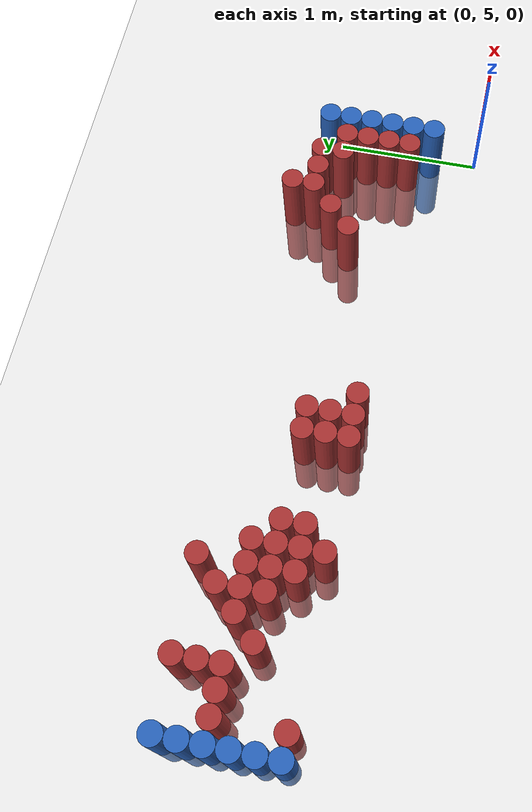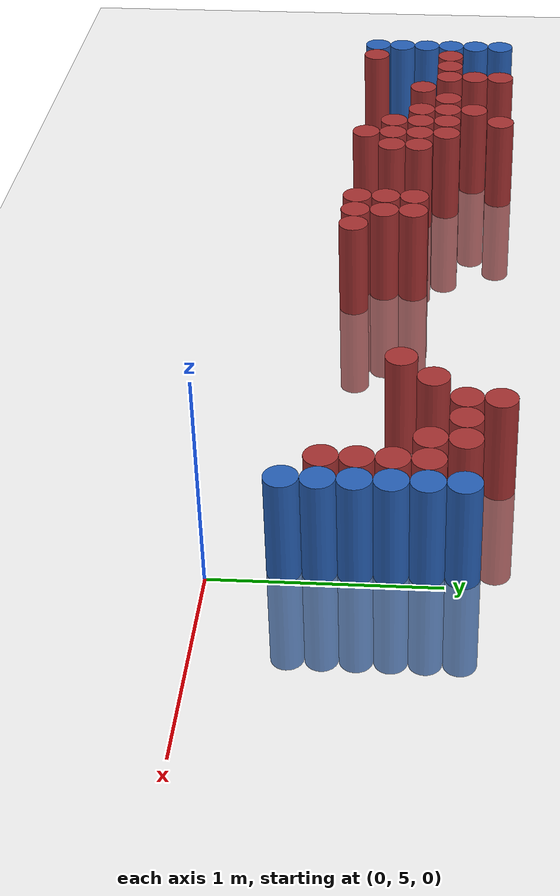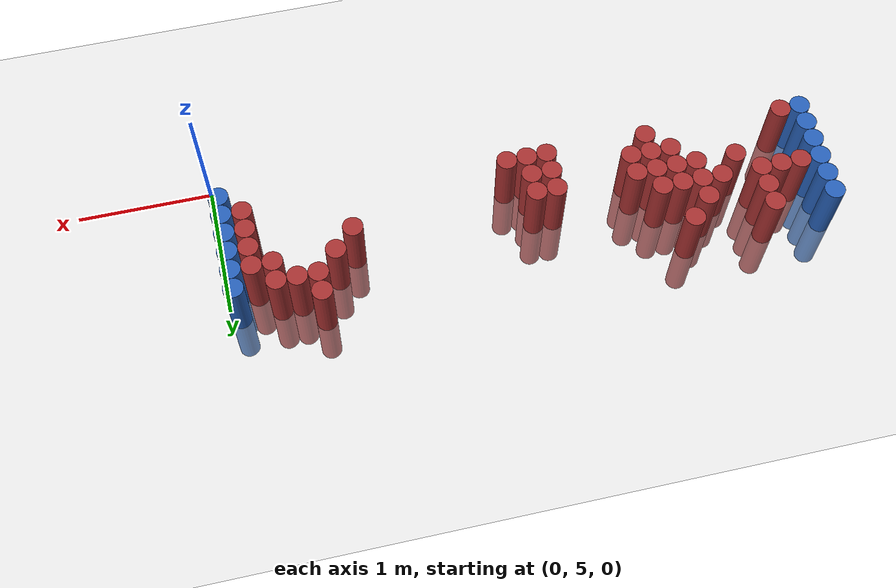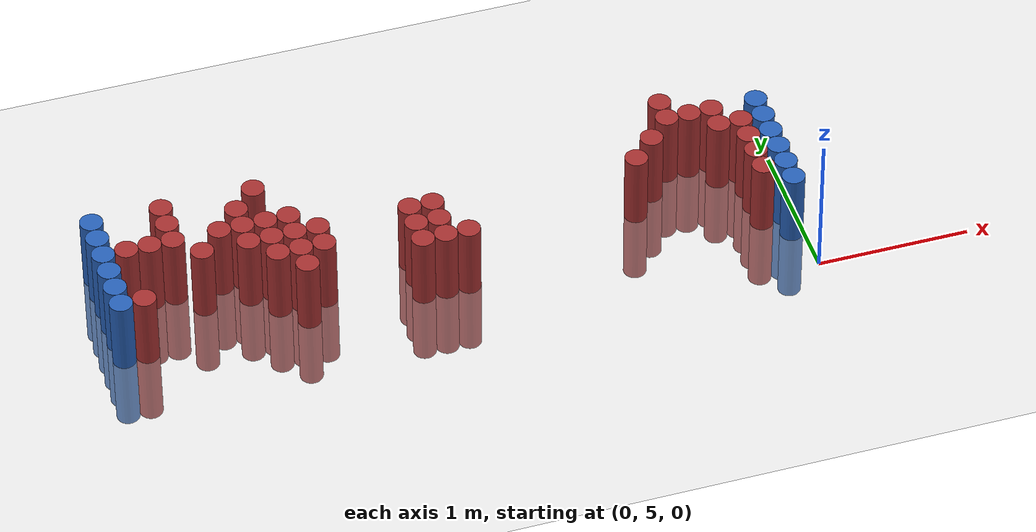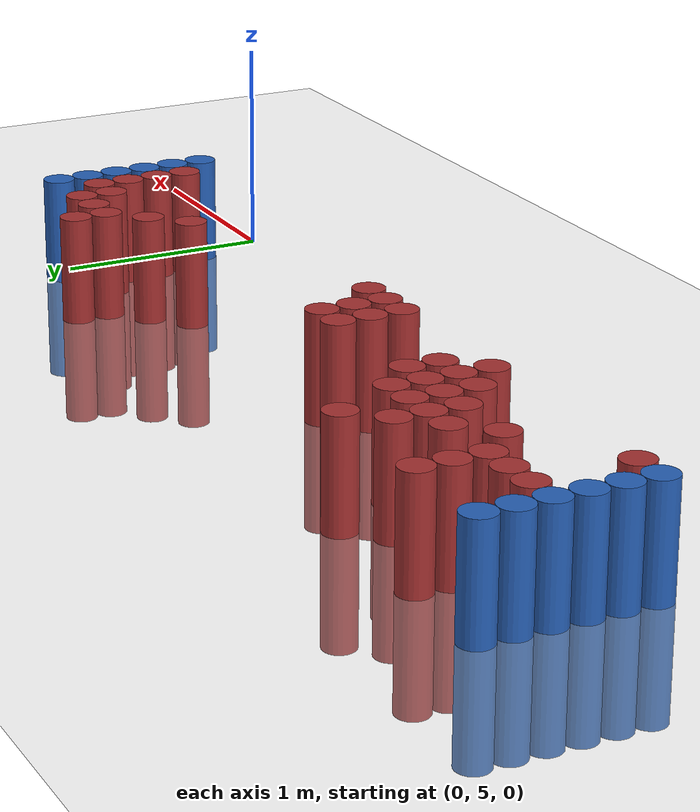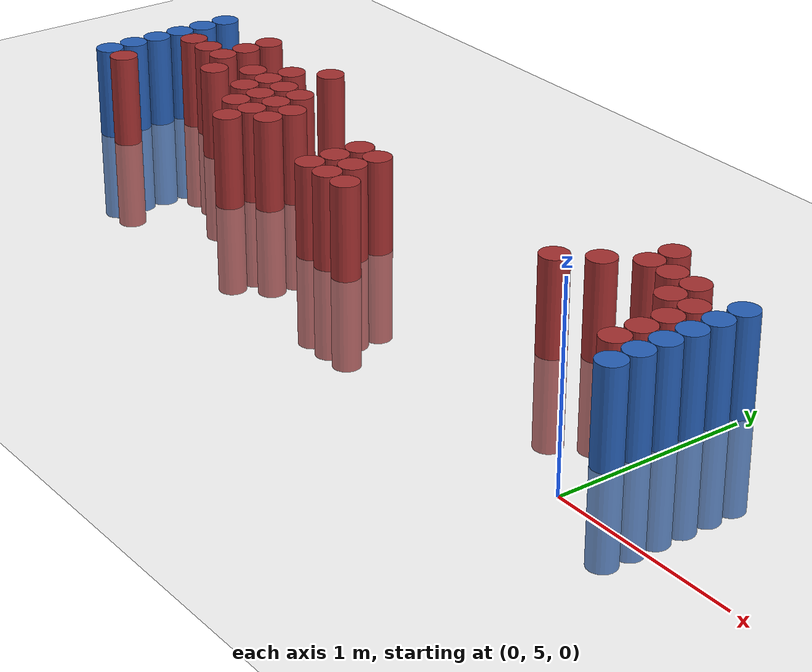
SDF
<sdf version="1.6">
 <world name="default">
  <model name="ground_plane">
   <static>1</static>
   <link name="link">
    <collision name="collision">
     <geometry><plane><normal>0 0 1</normal><size>100 100</size></plane></geometry>
     <surface><friction><ode><mu>100</mu><mu2>50</mu2></ode></friction></surface>
    </collision>
    <visual name="visual">
     <cast_shadows>0</cast_shadows>
     <geometry><plane><normal>0 0 1</normal><size>100 100</size></plane></geometry>
     <material>
      <script><uri>file://media/materials/scripts/gazebo.material</uri><name>Gazebo/Grey</name></script>
     </material>
    </visual>
   </link>
  </model>
  <model name="unit_cylinder_98">
   <static>1</static>
   <pose>-4.425000 5.475000 0.000000 0.000000 0.000000 0.000000</pose>
   <link name="link">
    <inertial>
     <mass>1</mass>
     <inertia><ixx>0.145833</ixx><ixy>0</ixy><ixz>0</ixz><iyy>0.145833</iyy><iyz>0</iyz><izz>0.125</izz></inertia>
    </inertial>
    <collision name="collision">
     <geometry><cylinder><radius>0.075000</radius><length>1</length></cylinder></geometry>
    </collision>
    <visual name="visual">
     <geometry><cylinder><radius>0.075000</radius><length>1</length></cylinder></geometry>
     <material>
      <ambient>0.152000 0.379000 0.720000 1</ambient>
      <diffuse>0.152000 0.379000 0.720000 1</diffuse>
     </material>
     <material>
      <script><name>Gazebo/Grey</name><uri>file://media/materials/scripts/gazebo.material</uri></script>
     </material>
    </visual>
   </link>
  </model>
  <model name="unit_cylinder_99">
   <static>1</static>
   <pose>-4.425000 5.625000 0.000000 0.000000 0.000000 0.000000</pose>
   <link name="link">
    <inertial>
     <mass>1</mass>
     <inertia><ixx>0.145833</ixx><ixy>0</ixy><ixz>0</ixz><iyy>0.145833</iyy><iyz>0</iyz><izz>0.125</izz></inertia>
    </inertial>
    <collision name="collision">
     <geometry><cylinder><radius>0.075000</radius><length>1</length></cylinder></geometry>
    </collision>
    <visual name="visual">
     <geometry><cylinder><radius>0.075000</radius><length>1</length></cylinder></geometry>
     <material>
      <ambient>0.152000 0.379000 0.720000 1</ambient>
      <diffuse>0.152000 0.379000 0.720000 1</diffuse>
     </material>
     <material>
      <script><name>Gazebo/Grey</name><uri>file://media/materials/scripts/gazebo.material</uri></script>
     </material>
    </visual>
   </link>
  </model>
  <model name="unit_cylinder_100">
   <static>1</static>
   <pose>-4.425000 5.775000 0.000000 0.000000 0.000000 0.000000</pose>
   <link name="link">
    <inertial>
     <mass>1</mass>
     <inertia><ixx>0.145833</ixx><ixy>0</ixy><ixz>0</ixz><iyy>0.145833</iyy><iyz>0</iyz><izz>0.125</izz></inertia>
    </inertial>
    <collision name="collision">
     <geometry><cylinder><radius>0.075000</radius><length>1</length></cylinder></geometry>
    </collision>
    <visual name="visual">
     <geometry><cylinder><radius>0.075000</radius><length>1</length></cylinder></geometry>
     <material>
      <ambient>0.152000 0.379000 0.720000 1</ambient>
      <diffuse>0.152000 0.379000 0.720000 1</diffuse>
     </material>
     <material>
      <script><name>Gazebo/Grey</name><uri>file://media/materials/scripts/gazebo.material</uri></script>
     </material>
    </visual>
   </link>
  </model>
  <model name="unit_cylinder_101">
   <static>1</static>
   <pose>-4.425000 5.925000 0.000000 0.000000 0.000000 0.000000</pose>
   <link name="link">
    <inertial>
     <mass>1</mass>
     <inertia><ixx>0.145833</ixx><ixy>0</ixy><ixz>0</ixz><iyy>0.145833</iyy><iyz>0</iyz><izz>0.125</izz></inertia>
    </inertial>
    <collision name="collision">
     <geometry><cylinder><radius>0.075000</radius><length>1</length></cylinder></geometry>
    </collision>
    <visual name="visual">
     <geometry><cylinder><radius>0.075000</radius><length>1</length></cylinder></geometry>
     <material>
      <ambient>0.152000 0.379000 0.720000 1</ambient>
      <diffuse>0.152000 0.379000 0.720000 1</diffuse>
     </material>
     <material>
      <script><name>Gazebo/Grey</name><uri>file://media/materials/scripts/gazebo.material</uri></script>
     </material>
    </visual>
   </link>
  </model>
  <model name="unit_cylinder_102">
   <static>1</static>
   <pose>-4.425000 6.075000 0.000000 0.000000 0.000000 0.000000</pose>
   <link name="link">
    <inertial>
     <mass>1</mass>
     <inertia><ixx>0.145833</ixx><ixy>0</ixy><ixz>0</ixz><iyy>0.145833</iyy><iyz>0</iyz><izz>0.125</izz></inertia>
    </inertial>
    <collision name="collision">
     <geometry><cylinder><radius>0.075000</radius><length>1</length></cylinder></geometry>
    </collision>
    <visual name="visual">
     <geometry><cylinder><radius>0.075000</radius><length>1</length></cylinder></geometry>
     <material>
      <ambient>0.152000 0.379000 0.720000 1</ambient>
      <diffuse>0.152000 0.379000 0.720000 1</diffuse>
     </material>
     <material>
      <script><name>Gazebo/Grey</name><uri>file://media/materials/scripts/gazebo.material</uri></script>
     </material>
    </visual>
   </link>
  </model>
  <model name="unit_cylinder_103">
   <static>1</static>
   <pose>-4.425000 6.225000 0.000000 0.000000 0.000000 0.000000</pose>
   <link name="link">
    <inertial>
     <mass>1</mass>
     <inertia><ixx>0.145833</ixx><ixy>0</ixy><ixz>0</ixz><iyy>0.145833</iyy><iyz>0</iyz><izz>0.125</izz></inertia>
    </inertial>
    <collision name="collision">
     <geometry><cylinder><radius>0.075000</radius><length>1</length></cylinder></geometry>
    </collision>
    <visual name="visual">
     <geometry><cylinder><radius>0.075000</radius><length>1</length></cylinder></geometry>
     <material>
      <ambient>0.152000 0.379000 0.720000 1</ambient>
      <diffuse>0.152000 0.379000 0.720000 1</diffuse>
     </material>
     <material>
      <script><name>Gazebo/Grey</name><uri>file://media/materials/scripts/gazebo.material</uri></script>
     </material>
    </visual>
   </link>
  </model>
  <model name="unit_cylinder_127">
   <static>1</static>
   <pose>-4.275000 5.475000 0.000000 0.000000 0.000000 0.000000</pose>
   <link name="link">
    <inertial>
     <mass>1</mass>
     <inertia><ixx>0.145833</ixx><ixy>0</ixy><ixz>0</ixz><iyy>0.145833</iyy><iyz>0</iyz><izz>0.125</izz></inertia>
    </inertial>
    <collision name="collision">
     <geometry><cylinder><radius>0.075000</radius><length>1</length></cylinder></geometry>
    </collision>
    <visual name="visual">
     <geometry><cylinder><radius>0.075000</radius><length>1</length></cylinder></geometry>
     <material>
      <ambient>0.648000 0.192000 0.192000 1</ambient>
      <diffuse>0.648000 0.192000 0.192000 1</diffuse>
     </material>
     <material>
      <script><name>Gazebo/Grey</name><uri>file://media/materials/scripts/gazebo.material</uri></script>
     </material>
    </visual>
   </link>
  </model>
  <model name="unit_cylinder_128">
   <static>1</static>
   <pose>-4.275000 5.925000 0.000000 0.000000 0.000000 0.000000</pose>
   <link name="link">
    <inertial>
     <mass>1</mass>
     <inertia><ixx>0.145833</ixx><ixy>0</ixy><ixz>0</ixz><iyy>0.145833</iyy><iyz>0</iyz><izz>0.125</izz></inertia>
    </inertial>
    <collision name="collision">
     <geometry><cylinder><radius>0.075000</radius><length>1</length></cylinder></geometry>
    </collision>
    <visual name="visual">
     <geometry><cylinder><radius>0.075000</radius><length>1</length></cylinder></geometry>
     <material>
      <ambient>0.648000 0.192000 0.192000 1</ambient>
      <diffuse>0.648000 0.192000 0.192000 1</diffuse>
     </material>
     <material>
      <script><name>Gazebo/Grey</name><uri>file://media/materials/scripts/gazebo.material</uri></script>
     </material>
    </visual>
   </link>
  </model>
  <model name="unit_cylinder_138">
   <static>1</static>
   <pose>-4.125000 5.925000 0.000000 0.000000 0.000000 0.000000</pose>
   <link name="link">
    <inertial>
     <mass>1</mass>
     <inertia><ixx>0.145833</ixx><ixy>0</ixy><ixz>0</ixz><iyy>0.145833</iyy><iyz>0</iyz><izz>0.125</izz></inertia>
    </inertial>
    <collision name="collision">
     <geometry><cylinder><radius>0.075000</radius><length>1</length></cylinder></geometry>
    </collision>
    <visual name="visual">
     <geometry><cylinder><radius>0.075000</radius><length>1</length></cylinder></geometry>
     <material>
      <ambient>0.648000 0.192000 0.192000 1</ambient>
      <diffuse>0.648000 0.192000 0.192000 1</diffuse>
     </material>
     <material>
      <script><name>Gazebo/Grey</name><uri>file://media/materials/scripts/gazebo.material</uri></script>
     </material>
    </visual>
   </link>
  </model>
  <model name="unit_cylinder_144">
   <static>1</static>
   <pose>-3.975000 5.925000 0.000000 0.000000 0.000000 0.000000</pose>
   <link name="link">
    <inertial>
     <mass>1</mass>
     <inertia><ixx>0.145833</ixx><ixy>0</ixy><ixz>0</ixz><iyy>0.145833</iyy><iyz>0</iyz><izz>0.125</izz></inertia>
    </inertial>
    <collision name="collision">
     <geometry><cylinder><radius>0.075000</radius><length>1</length></cylinder></geometry>
    </collision>
    <visual name="visual">
     <geometry><cylinder><radius>0.075000</radius><length>1</length></cylinder></geometry>
     <material>
      <ambient>0.648000 0.192000 0.192000 1</ambient>
      <diffuse>0.648000 0.192000 0.192000 1</diffuse>
     </material>
     <material>
      <script><name>Gazebo/Grey</name><uri>file://media/materials/scripts/gazebo.material</uri></script>
     </material>
    </visual>
   </link>
  </model>
  <model name="unit_cylinder_145">
   <static>1</static>
   <pose>-3.975000 6.075000 0.000000 0.000000 0.000000 0.000000</pose>
   <link name="link">
    <inertial>
     <mass>1</mass>
     <inertia><ixx>0.145833</ixx><ixy>0</ixy><ixz>0</ixz><iyy>0.145833</iyy><iyz>0</iyz><izz>0.125</izz></inertia>
    </inertial>
    <collision name="collision">
     <geometry><cylinder><radius>0.075000</radius><length>1</length></cylinder></geometry>
    </collision>
    <visual name="visual">
     <geometry><cylinder><radius>0.075000</radius><length>1</length></cylinder></geometry>
     <material>
      <ambient>0.648000 0.192000 0.192000 1</ambient>
      <diffuse>0.648000 0.192000 0.192000 1</diffuse>
     </material>
     <material>
      <script><name>Gazebo/Grey</name><uri>file://media/materials/scripts/gazebo.material</uri></script>
     </material>
    </visual>
   </link>
  </model>
  <model name="unit_cylinder_146">
   <static>1</static>
   <pose>-3.975000 6.225000 0.000000 0.000000 0.000000 0.000000</pose>
   <link name="link">
    <inertial>
     <mass>1</mass>
     <inertia><ixx>0.145833</ixx><ixy>0</ixy><ixz>0</ixz><iyy>0.145833</iyy><iyz>0</iyz><izz>0.125</izz></inertia>
    </inertial>
    <collision name="collision">
     <geometry><cylinder><radius>0.075000</radius><length>1</length></cylinder></geometry>
    </collision>
    <visual name="visual">
     <geometry><cylinder><radius>0.075000</radius><length>1</length></cylinder></geometry>
     <material>
      <ambient>0.648000 0.192000 0.192000 1</ambient>
      <diffuse>0.648000 0.192000 0.192000 1</diffuse>
     </material>
     <material>
      <script><name>Gazebo/Grey</name><uri>file://media/materials/scripts/gazebo.material</uri></script>
     </material>
    </visual>
   </link>
  </model>
  <model name="unit_cylinder_152">
   <static>1</static>
   <pose>-3.825000 5.775000 0.000000 0.000000 0.000000 0.000000</pose>
   <link name="link">
    <inertial>
     <mass>1</mass>
     <inertia><ixx>0.145833</ixx><ixy>0</ixy><ixz>0</ixz><iyy>0.145833</iyy><iyz>0</iyz><izz>0.125</izz></inertia>
    </inertial>
    <collision name="collision">
     <geometry><cylinder><radius>0.075000</radius><length>1</length></cylinder></geometry>
    </collision>
    <visual name="visual">
     <geometry><cylinder><radius>0.075000</radius><length>1</length></cylinder></geometry>
     <material>
      <ambient>0.648000 0.192000 0.192000 1</ambient>
      <diffuse>0.648000 0.192000 0.192000 1</diffuse>
     </material>
     <material>
      <script><name>Gazebo/Grey</name><uri>file://media/materials/scripts/gazebo.material</uri></script>
     </material>
    </visual>
   </link>
  </model>
  <model name="unit_cylinder_154">
   <static>1</static>
   <pose>-3.675000 5.925000 0.000000 0.000000 0.000000 0.000000</pose>
   <link name="link">
    <inertial>
     <mass>1</mass>
     <inertia><ixx>0.145833</ixx><ixy>0</ixy><ixz>0</ixz><iyy>0.145833</iyy><iyz>0</iyz><izz>0.125</izz></inertia>
    </inertial>
    <collision name="collision">
     <geometry><cylinder><radius>0.075000</radius><length>1</length></cylinder></geometry>
    </collision>
    <visual name="visual">
     <geometry><cylinder><radius>0.075000</radius><length>1</length></cylinder></geometry>
     <material>
      <ambient>0.648000 0.192000 0.192000 1</ambient>
      <diffuse>0.648000 0.192000 0.192000 1</diffuse>
     </material>
     <material>
      <script><name>Gazebo/Grey</name><uri>file://media/materials/scripts/gazebo.material</uri></script>
     </material>
    </visual>
   </link>
  </model>
  <model name="unit_cylinder_158">
   <static>1</static>
   <pose>-3.525000 5.775000 0.000000 0.000000 0.000000 0.000000</pose>
   <link name="link">
    <inertial>
     <mass>1</mass>
     <inertia><ixx>0.145833</ixx><ixy>0</ixy><ixz>0</ixz><iyy>0.145833</iyy><iyz>0</iyz><izz>0.125</izz></inertia>
    </inertial>
    <collision name="collision">
     <geometry><cylinder><radius>0.075000</radius><length>1</length></cylinder></geometry>
    </collision>
    <visual name="visual">
     <geometry><cylinder><radius>0.075000</radius><length>1</length></cylinder></geometry>
     <material>
      <ambient>0.648000 0.192000 0.192000 1</ambient>
      <diffuse>0.648000 0.192000 0.192000 1</diffuse>
     </material>
     <material>
      <script><name>Gazebo/Grey</name><uri>file://media/materials/scripts/gazebo.material</uri></script>
     </material>
    </visual>
   </link>
  </model>
  <model name="unit_cylinder_159">
   <static>1</static>
   <pose>-3.525000 5.925000 0.000000 0.000000 0.000000 0.000000</pose>
   <link name="link">
    <inertial>
     <mass>1</mass>
     <inertia><ixx>0.145833</ixx><ixy>0</ixy><ixz>0</ixz><iyy>0.145833</iyy><iyz>0</iyz><izz>0.125</izz></inertia>
    </inertial>
    <collision name="collision">
     <geometry><cylinder><radius>0.075000</radius><length>1</length></cylinder></geometry>
    </collision>
    <visual name="visual">
     <geometry><cylinder><radius>0.075000</radius><length>1</length></cylinder></geometry>
     <material>
      <ambient>0.648000 0.192000 0.192000 1</ambient>
      <diffuse>0.648000 0.192000 0.192000 1</diffuse>
     </material>
     <material>
      <script><name>Gazebo/Grey</name><uri>file://media/materials/scripts/gazebo.material</uri></script>
     </material>
    </visual>
   </link>
  </model>
  <model name="unit_cylinder_160">
   <static>1</static>
   <pose>-3.525000 6.075000 0.000000 0.000000 0.000000 0.000000</pose>
   <link name="link">
    <inertial>
     <mass>1</mass>
     <inertia><ixx>0.145833</ixx><ixy>0</ixy><ixz>0</ixz><iyy>0.145833</iyy><iyz>0</iyz><izz>0.125</izz></inertia>
    </inertial>
    <collision name="collision">
     <geometry><cylinder><radius>0.075000</radius><length>1</length></cylinder></geometry>
    </collision>
    <visual name="visual">
     <geometry><cylinder><radius>0.075000</radius><length>1</length></cylinder></geometry>
     <material>
      <ambient>0.648000 0.192000 0.192000 1</ambient>
      <diffuse>0.648000 0.192000 0.192000 1</diffuse>
     </material>
     <material>
      <script><name>Gazebo/Grey</name><uri>file://media/materials/scripts/gazebo.material</uri></script>
     </material>
    </visual>
   </link>
  </model>
  <model name="unit_cylinder_164">
   <static>1</static>
   <pose>-3.375000 5.625000 0.000000 0.000000 0.000000 0.000000</pose>
   <link name="link">
    <inertial>
     <mass>1</mass>
     <inertia><ixx>0.145833</ixx><ixy>0</ixy><ixz>0</ixz><iyy>0.145833</iyy><iyz>0</iyz><izz>0.125</izz></inertia>
    </inertial>
    <collision name="collision">
     <geometry><cylinder><radius>0.075000</radius><length>1</length></cylinder></geometry>
    </collision>
    <visual name="visual">
     <geometry><cylinder><radius>0.075000</radius><length>1</length></cylinder></geometry>
     <material>
      <ambient>0.648000 0.192000 0.192000 1</ambient>
      <diffuse>0.648000 0.192000 0.192000 1</diffuse>
     </material>
     <material>
      <script><name>Gazebo/Grey</name><uri>file://media/materials/scripts/gazebo.material</uri></script>
     </material>
    </visual>
   </link>
  </model>
  <model name="unit_cylinder_165">
   <static>1</static>
   <pose>-3.375000 5.775000 0.000000 0.000000 0.000000 0.000000</pose>
   <link name="link">
    <inertial>
     <mass>1</mass>
     <inertia><ixx>0.145833</ixx><ixy>0</ixy><ixz>0</ixz><iyy>0.145833</iyy><iyz>0</iyz><izz>0.125</izz></inertia>
    </inertial>
    <collision name="collision">
     <geometry><cylinder><radius>0.075000</radius><length>1</length></cylinder></geometry>
    </collision>
    <visual name="visual">
     <geometry><cylinder><radius>0.075000</radius><length>1</length></cylinder></geometry>
     <material>
      <ambient>0.648000 0.192000 0.192000 1</ambient>
      <diffuse>0.648000 0.192000 0.192000 1</diffuse>
     </material>
     <material>
      <script><name>Gazebo/Grey</name><uri>file://media/materials/scripts/gazebo.material</uri></script>
     </material>
    </visual>
   </link>
  </model>
  <model name="unit_cylinder_166">
   <static>1</static>
   <pose>-3.375000 5.925000 0.000000 0.000000 0.000000 0.000000</pose>
   <link name="link">
    <inertial>
     <mass>1</mass>
     <inertia><ixx>0.145833</ixx><ixy>0</ixy><ixz>0</ixz><iyy>0.145833</iyy><iyz>0</iyz><izz>0.125</izz></inertia>
    </inertial>
    <collision name="collision">
     <geometry><cylinder><radius>0.075000</radius><length>1</length></cylinder></geometry>
    </collision>
    <visual name="visual">
     <geometry><cylinder><radius>0.075000</radius><length>1</length></cylinder></geometry>
     <material>
      <ambient>0.648000 0.192000 0.192000 1</ambient>
      <diffuse>0.648000 0.192000 0.192000 1</diffuse>
     </material>
     <material>
      <script><name>Gazebo/Grey</name><uri>file://media/materials/scripts/gazebo.material</uri></script>
     </material>
    </visual>
   </link>
  </model>
  <model name="unit_cylinder_167">
   <static>1</static>
   <pose>-3.375000 6.225000 0.000000 0.000000 0.000000 0.000000</pose>
   <link name="link">
    <inertial>
     <mass>1</mass>
     <inertia><ixx>0.145833</ixx><ixy>0</ixy><ixz>0</ixz><iyy>0.145833</iyy><iyz>0</iyz><izz>0.125</izz></inertia>
    </inertial>
    <collision name="collision">
     <geometry><cylinder><radius>0.075000</radius><length>1</length></cylinder></geometry>
    </collision>
    <visual name="visual">
     <geometry><cylinder><radius>0.075000</radius><length>1</length></cylinder></geometry>
     <material>
      <ambient>0.648000 0.192000 0.192000 1</ambient>
      <diffuse>0.648000 0.192000 0.192000 1</diffuse>
     </material>
     <material>
      <script><name>Gazebo/Grey</name><uri>file://media/materials/scripts/gazebo.material</uri></script>
     </material>
    </visual>
   </link>
  </model>
  <model name="unit_cylinder_170">
   <static>1</static>
   <pose>-3.225000 5.475000 0.000000 0.000000 0.000000 0.000000</pose>
   <link name="link">
    <inertial>
     <mass>1</mass>
     <inertia><ixx>0.145833</ixx><ixy>0</ixy><ixz>0</ixz><iyy>0.145833</iyy><iyz>0</iyz><izz>0.125</izz></inertia>
    </inertial>
    <collision name="collision">
     <geometry><cylinder><radius>0.075000</radius><length>1</length></cylinder></geometry>
    </collision>
    <visual name="visual">
     <geometry><cylinder><radius>0.075000</radius><length>1</length></cylinder></geometry>
     <material>
      <ambient>0.648000 0.192000 0.192000 1</ambient>
      <diffuse>0.648000 0.192000 0.192000 1</diffuse>
     </material>
     <material>
      <script><name>Gazebo/Grey</name><uri>file://media/materials/scripts/gazebo.material</uri></script>
     </material>
    </visual>
   </link>
  </model>
  <model name="unit_cylinder_171">
   <static>1</static>
   <pose>-3.225000 5.625000 0.000000 0.000000 0.000000 0.000000</pose>
   <link name="link">
    <inertial>
     <mass>1</mass>
     <inertia><ixx>0.145833</ixx><ixy>0</ixy><ixz>0</ixz><iyy>0.145833</iyy><iyz>0</iyz><izz>0.125</izz></inertia>
    </inertial>
    <collision name="collision">
     <geometry><cylinder><radius>0.075000</radius><length>1</length></cylinder></geometry>
    </collision>
    <visual name="visual">
     <geometry><cylinder><radius>0.075000</radius><length>1</length></cylinder></geometry>
     <material>
      <ambient>0.648000 0.192000 0.192000 1</ambient>
      <diffuse>0.648000 0.192000 0.192000 1</diffuse>
     </material>
     <material>
      <script><name>Gazebo/Grey</name><uri>file://media/materials/scripts/gazebo.material</uri></script>
     </material>
    </visual>
   </link>
  </model>
  <model name="unit_cylinder_172">
   <static>1</static>
   <pose>-3.225000 5.775000 0.000000 0.000000 0.000000 0.000000</pose>
   <link name="link">
    <inertial>
     <mass>1</mass>
     <inertia><ixx>0.145833</ixx><ixy>0</ixy><ixz>0</ixz><iyy>0.145833</iyy><iyz>0</iyz><izz>0.125</izz></inertia>
    </inertial>
    <collision name="collision">
     <geometry><cylinder><radius>0.075000</radius><length>1</length></cylinder></geometry>
    </collision>
    <visual name="visual">
     <geometry><cylinder><radius>0.075000</radius><length>1</length></cylinder></geometry>
     <material>
      <ambient>0.648000 0.192000 0.192000 1</ambient>
      <diffuse>0.648000 0.192000 0.192000 1</diffuse>
     </material>
     <material>
      <script><name>Gazebo/Grey</name><uri>file://media/materials/scripts/gazebo.material</uri></script>
     </material>
    </visual>
   </link>
  </model>
  <model name="unit_cylinder_173">
   <static>1</static>
   <pose>-3.225000 5.925000 0.000000 0.000000 0.000000 0.000000</pose>
   <link name="link">
    <inertial>
     <mass>1</mass>
     <inertia><ixx>0.145833</ixx><ixy>0</ixy><ixz>0</ixz><iyy>0.145833</iyy><iyz>0</iyz><izz>0.125</izz></inertia>
    </inertial>
    <collision name="collision">
     <geometry><cylinder><radius>0.075000</radius><length>1</length></cylinder></geometry>
    </collision>
    <visual name="visual">
     <geometry><cylinder><radius>0.075000</radius><length>1</length></cylinder></geometry>
     <material>
      <ambient>0.648000 0.192000 0.192000 1</ambient>
      <diffuse>0.648000 0.192000 0.192000 1</diffuse>
     </material>
     <material>
      <script><name>Gazebo/Grey</name><uri>file://media/materials/scripts/gazebo.material</uri></script>
     </material>
    </visual>
   </link>
  </model>
  <model name="unit_cylinder_177">
   <static>1</static>
   <pose>-3.075000 5.625000 0.000000 0.000000 0.000000 0.000000</pose>
   <link name="link">
    <inertial>
     <mass>1</mass>
     <inertia><ixx>0.145833</ixx><ixy>0</ixy><ixz>0</ixz><iyy>0.145833</iyy><iyz>0</iyz><izz>0.125</izz></inertia>
    </inertial>
    <collision name="collision">
     <geometry><cylinder><radius>0.075000</radius><length>1</length></cylinder></geometry>
    </collision>
    <visual name="visual">
     <geometry><cylinder><radius>0.075000</radius><length>1</length></cylinder></geometry>
     <material>
      <ambient>0.648000 0.192000 0.192000 1</ambient>
      <diffuse>0.648000 0.192000 0.192000 1</diffuse>
     </material>
     <material>
      <script><name>Gazebo/Grey</name><uri>file://media/materials/scripts/gazebo.material</uri></script>
     </material>
    </visual>
   </link>
  </model>
  <model name="unit_cylinder_178">
   <static>1</static>
   <pose>-3.075000 5.775000 0.000000 0.000000 0.000000 0.000000</pose>
   <link name="link">
    <inertial>
     <mass>1</mass>
     <inertia><ixx>0.145833</ixx><ixy>0</ixy><ixz>0</ixz><iyy>0.145833</iyy><iyz>0</iyz><izz>0.125</izz></inertia>
    </inertial>
    <collision name="collision">
     <geometry><cylinder><radius>0.075000</radius><length>1</length></cylinder></geometry>
    </collision>
    <visual name="visual">
     <geometry><cylinder><radius>0.075000</radius><length>1</length></cylinder></geometry>
     <material>
      <ambient>0.648000 0.192000 0.192000 1</ambient>
      <diffuse>0.648000 0.192000 0.192000 1</diffuse>
     </material>
     <material>
      <script><name>Gazebo/Grey</name><uri>file://media/materials/scripts/gazebo.material</uri></script>
     </material>
    </visual>
   </link>
  </model>
  <model name="unit_cylinder_208">
   <static>1</static>
   <pose>-2.475000 5.475000 0.000000 0.000000 0.000000 0.000000</pose>
   <link name="link">
    <inertial>
     <mass>1</mass>
     <inertia><ixx>0.145833</ixx><ixy>0</ixy><ixz>0</ixz><iyy>0.145833</iyy><iyz>0</iyz><izz>0.125</izz></inertia>
    </inertial>
    <collision name="collision">
     <geometry><cylinder><radius>0.075000</radius><length>1</length></cylinder></geometry>
    </collision>
    <visual name="visual">
     <geometry><cylinder><radius>0.075000</radius><length>1</length></cylinder></geometry>
     <material>
      <ambient>0.648000 0.192000 0.192000 1</ambient>
      <diffuse>0.648000 0.192000 0.192000 1</diffuse>
     </material>
     <material>
      <script><name>Gazebo/Grey</name><uri>file://media/materials/scripts/gazebo.material</uri></script>
     </material>
    </visual>
   </link>
  </model>
  <model name="unit_cylinder_209">
   <static>1</static>
   <pose>-2.475000 5.625000 0.000000 0.000000 0.000000 0.000000</pose>
   <link name="link">
    <inertial>
     <mass>1</mass>
     <inertia><ixx>0.145833</ixx><ixy>0</ixy><ixz>0</ixz><iyy>0.145833</iyy><iyz>0</iyz><izz>0.125</izz></inertia>
    </inertial>
    <collision name="collision">
     <geometry><cylinder><radius>0.075000</radius><length>1</length></cylinder></geometry>
    </collision>
    <visual name="visual">
     <geometry><cylinder><radius>0.075000</radius><length>1</length></cylinder></geometry>
     <material>
      <ambient>0.648000 0.192000 0.192000 1</ambient>
      <diffuse>0.648000 0.192000 0.192000 1</diffuse>
     </material>
     <material>
      <script><name>Gazebo/Grey</name><uri>file://media/materials/scripts/gazebo.material</uri></script>
     </material>
    </visual>
   </link>
  </model>
  <model name="unit_cylinder_210">
   <static>1</static>
   <pose>-2.475000 5.775000 0.000000 0.000000 0.000000 0.000000</pose>
   <link name="link">
    <inertial>
     <mass>1</mass>
     <inertia><ixx>0.145833</ixx><ixy>0</ixy><ixz>0</ixz><iyy>0.145833</iyy><iyz>0</iyz><izz>0.125</izz></inertia>
    </inertial>
    <collision name="collision">
     <geometry><cylinder><radius>0.075000</radius><length>1</length></cylinder></geometry>
    </collision>
    <visual name="visual">
     <geometry><cylinder><radius>0.075000</radius><length>1</length></cylinder></geometry>
     <material>
      <ambient>0.648000 0.192000 0.192000 1</ambient>
      <diffuse>0.648000 0.192000 0.192000 1</diffuse>
     </material>
     <material>
      <script><name>Gazebo/Grey</name><uri>file://media/materials/scripts/gazebo.material</uri></script>
     </material>
    </visual>
   </link>
  </model>
  <model name="unit_cylinder_215">
   <static>1</static>
   <pose>-2.325000 5.475000 0.000000 0.000000 0.000000 0.000000</pose>
   <link name="link">
    <inertial>
     <mass>1</mass>
     <inertia><ixx>0.145833</ixx><ixy>0</ixy><ixz>0</ixz><iyy>0.145833</iyy><iyz>0</iyz><izz>0.125</izz></inertia>
    </inertial>
    <collision name="collision">
     <geometry><cylinder><radius>0.075000</radius><length>1</length></cylinder></geometry>
    </collision>
    <visual name="visual">
     <geometry><cylinder><radius>0.075000</radius><length>1</length></cylinder></geometry>
     <material>
      <ambient>0.648000 0.192000 0.192000 1</ambient>
      <diffuse>0.648000 0.192000 0.192000 1</diffuse>
     </material>
     <material>
      <script><name>Gazebo/Grey</name><uri>file://media/materials/scripts/gazebo.material</uri></script>
     </material>
    </visual>
   </link>
  </model>
  <model name="unit_cylinder_216">
   <static>1</static>
   <pose>-2.325000 5.625000 0.000000 0.000000 0.000000 0.000000</pose>
   <link name="link">
    <inertial>
     <mass>1</mass>
     <inertia><ixx>0.145833</ixx><ixy>0</ixy><ixz>0</ixz><iyy>0.145833</iyy><iyz>0</iyz><izz>0.125</izz></inertia>
    </inertial>
    <collision name="collision">
     <geometry><cylinder><radius>0.075000</radius><length>1</length></cylinder></geometry>
    </collision>
    <visual name="visual">
     <geometry><cylinder><radius>0.075000</radius><length>1</length></cylinder></geometry>
     <material>
      <ambient>0.648000 0.192000 0.192000 1</ambient>
      <diffuse>0.648000 0.192000 0.192000 1</diffuse>
     </material>
     <material>
      <script><name>Gazebo/Grey</name><uri>file://media/materials/scripts/gazebo.material</uri></script>
     </material>
    </visual>
   </link>
  </model>
  <model name="unit_cylinder_217">
   <static>1</static>
   <pose>-2.325000 5.775000 0.000000 0.000000 0.000000 0.000000</pose>
   <link name="link">
    <inertial>
     <mass>1</mass>
     <inertia><ixx>0.145833</ixx><ixy>0</ixy><ixz>0</ixz><iyy>0.145833</iyy><iyz>0</iyz><izz>0.125</izz></inertia>
    </inertial>
    <collision name="collision">
     <geometry><cylinder><radius>0.075000</radius><length>1</length></cylinder></geometry>
    </collision>
    <visual name="visual">
     <geometry><cylinder><radius>0.075000</radius><length>1</length></cylinder></geometry>
     <material>
      <ambient>0.648000 0.192000 0.192000 1</ambient>
      <diffuse>0.648000 0.192000 0.192000 1</diffuse>
     </material>
     <material>
      <script><name>Gazebo/Grey</name><uri>file://media/materials/scripts/gazebo.material</uri></script>
     </material>
    </visual>
   </link>
  </model>
  <model name="unit_cylinder_219">
   <static>1</static>
   <pose>-2.175000 5.475000 0.000000 0.000000 0.000000 0.000000</pose>
   <link name="link">
    <inertial>
     <mass>1</mass>
     <inertia><ixx>0.145833</ixx><ixy>0</ixy><ixz>0</ixz><iyy>0.145833</iyy><iyz>0</iyz><izz>0.125</izz></inertia>
    </inertial>
    <collision name="collision">
     <geometry><cylinder><radius>0.075000</radius><length>1</length></cylinder></geometry>
    </collision>
    <visual name="visual">
     <geometry><cylinder><radius>0.075000</radius><length>1</length></cylinder></geometry>
     <material>
      <ambient>0.648000 0.192000 0.192000 1</ambient>
      <diffuse>0.648000 0.192000 0.192000 1</diffuse>
     </material>
     <material>
      <script><name>Gazebo/Grey</name><uri>file://media/materials/scripts/gazebo.material</uri></script>
     </material>
    </visual>
   </link>
  </model>
  <model name="unit_cylinder_232">
   <static>1</static>
   <pose>-0.975000 5.775000 0.000000 0.000000 0.000000 0.000000</pose>
   <link name="link">
    <inertial>
     <mass>1</mass>
     <inertia><ixx>0.145833</ixx><ixy>0</ixy><ixz>0</ixz><iyy>0.145833</iyy><iyz>0</iyz><izz>0.125</izz></inertia>
    </inertial>
    <collision name="collision">
     <geometry><cylinder><radius>0.075000</radius><length>1</length></cylinder></geometry>
    </collision>
    <visual name="visual">
     <geometry><cylinder><radius>0.075000</radius><length>1</length></cylinder></geometry>
     <material>
      <ambient>0.648000 0.192000 0.192000 1</ambient>
      <diffuse>0.648000 0.192000 0.192000 1</diffuse>
     </material>
     <material>
      <script><name>Gazebo/Grey</name><uri>file://media/materials/scripts/gazebo.material</uri></script>
     </material>
    </visual>
   </link>
  </model>
  <model name="unit_cylinder_237">
   <static>1</static>
   <pose>-0.825000 5.925000 0.000000 0.000000 0.000000 0.000000</pose>
   <link name="link">
    <inertial>
     <mass>1</mass>
     <inertia><ixx>0.145833</ixx><ixy>0</ixy><ixz>0</ixz><iyy>0.145833</iyy><iyz>0</iyz><izz>0.125</izz></inertia>
    </inertial>
    <collision name="collision">
     <geometry><cylinder><radius>0.075000</radius><length>1</length></cylinder></geometry>
    </collision>
    <visual name="visual">
     <geometry><cylinder><radius>0.075000</radius><length>1</length></cylinder></geometry>
     <material>
      <ambient>0.648000 0.192000 0.192000 1</ambient>
      <diffuse>0.648000 0.192000 0.192000 1</diffuse>
     </material>
     <material>
      <script><name>Gazebo/Grey</name><uri>file://media/materials/scripts/gazebo.material</uri></script>
     </material>
    </visual>
   </link>
  </model>
  <model name="unit_cylinder_245">
   <static>1</static>
   <pose>-0.675000 6.075000 0.000000 0.000000 0.000000 0.000000</pose>
   <link name="link">
    <inertial>
     <mass>1</mass>
     <inertia><ixx>0.145833</ixx><ixy>0</ixy><ixz>0</ixz><iyy>0.145833</iyy><iyz>0</iyz><izz>0.125</izz></inertia>
    </inertial>
    <collision name="collision">
     <geometry><cylinder><radius>0.075000</radius><length>1</length></cylinder></geometry>
    </collision>
    <visual name="visual">
     <geometry><cylinder><radius>0.075000</radius><length>1</length></cylinder></geometry>
     <material>
      <ambient>0.648000 0.192000 0.192000 1</ambient>
      <diffuse>0.648000 0.192000 0.192000 1</diffuse>
     </material>
     <material>
      <script><name>Gazebo/Grey</name><uri>file://media/materials/scripts/gazebo.material</uri></script>
     </material>
    </visual>
   </link>
  </model>
  <model name="unit_cylinder_246">
   <static>1</static>
   <pose>-0.675000 6.225000 0.000000 0.000000 0.000000 0.000000</pose>
   <link name="link">
    <inertial>
     <mass>1</mass>
     <inertia><ixx>0.145833</ixx><ixy>0</ixy><ixz>0</ixz><iyy>0.145833</iyy><iyz>0</iyz><izz>0.125</izz></inertia>
    </inertial>
    <collision name="collision">
     <geometry><cylinder><radius>0.075000</radius><length>1</length></cylinder></geometry>
    </collision>
    <visual name="visual">
     <geometry><cylinder><radius>0.075000</radius><length>1</length></cylinder></geometry>
     <material>
      <ambient>0.648000 0.192000 0.192000 1</ambient>
      <diffuse>0.648000 0.192000 0.192000 1</diffuse>
     </material>
     <material>
      <script><name>Gazebo/Grey</name><uri>file://media/materials/scripts/gazebo.material</uri></script>
     </material>
    </visual>
   </link>
  </model>
  <model name="unit_cylinder_250">
   <static>1</static>
   <pose>-0.525000 6.075000 0.000000 0.000000 0.000000 0.000000</pose>
   <link name="link">
    <inertial>
     <mass>1</mass>
     <inertia><ixx>0.145833</ixx><ixy>0</ixy><ixz>0</ixz><iyy>0.145833</iyy><iyz>0</iyz><izz>0.125</izz></inertia>
    </inertial>
    <collision name="collision">
     <geometry><cylinder><radius>0.075000</radius><length>1</length></cylinder></geometry>
    </collision>
    <visual name="visual">
     <geometry><cylinder><radius>0.075000</radius><length>1</length></cylinder></geometry>
     <material>
      <ambient>0.648000 0.192000 0.192000 1</ambient>
      <diffuse>0.648000 0.192000 0.192000 1</diffuse>
     </material>
     <material>
      <script><name>Gazebo/Grey</name><uri>file://media/materials/scripts/gazebo.material</uri></script>
     </material>
    </visual>
   </link>
  </model>
  <model name="unit_cylinder_252">
   <static>1</static>
   <pose>-0.375000 5.925000 0.000000 0.000000 0.000000 0.000000</pose>
   <link name="link">
    <inertial>
     <mass>1</mass>
     <inertia><ixx>0.145833</ixx><ixy>0</ixy><ixz>0</ixz><iyy>0.145833</iyy><iyz>0</iyz><izz>0.125</izz></inertia>
    </inertial>
    <collision name="collision">
     <geometry><cylinder><radius>0.075000</radius><length>1</length></cylinder></geometry>
    </collision>
    <visual name="visual">
     <geometry><cylinder><radius>0.075000</radius><length>1</length></cylinder></geometry>
     <material>
      <ambient>0.648000 0.192000 0.192000 1</ambient>
      <diffuse>0.648000 0.192000 0.192000 1</diffuse>
     </material>
     <material>
      <script><name>Gazebo/Grey</name><uri>file://media/materials/scripts/gazebo.material</uri></script>
     </material>
    </visual>
   </link>
  </model>
  <model name="unit_cylinder_253">
   <static>1</static>
   <pose>-0.375000 6.075000 0.000000 0.000000 0.000000 0.000000</pose>
   <link name="link">
    <inertial>
     <mass>1</mass>
     <inertia><ixx>0.145833</ixx><ixy>0</ixy><ixz>0</ixz><iyy>0.145833</iyy><iyz>0</iyz><izz>0.125</izz></inertia>
    </inertial>
    <collision name="collision">
     <geometry><cylinder><radius>0.075000</radius><length>1</length></cylinder></geometry>
    </collision>
    <visual name="visual">
     <geometry><cylinder><radius>0.075000</radius><length>1</length></cylinder></geometry>
     <material>
      <ambient>0.648000 0.192000 0.192000 1</ambient>
      <diffuse>0.648000 0.192000 0.192000 1</diffuse>
     </material>
     <material>
      <script><name>Gazebo/Grey</name><uri>file://media/materials/scripts/gazebo.material</uri></script>
     </material>
    </visual>
   </link>
  </model>
  <model name="unit_cylinder_257">
   <static>1</static>
   <pose>-0.225000 5.475000 0.000000 0.000000 0.000000 0.000000</pose>
   <link name="link">
    <inertial>
     <mass>1</mass>
     <inertia><ixx>0.145833</ixx><ixy>0</ixy><ixz>0</ixz><iyy>0.145833</iyy><iyz>0</iyz><izz>0.125</izz></inertia>
    </inertial>
    <collision name="collision">
     <geometry><cylinder><radius>0.075000</radius><length>1</length></cylinder></geometry>
    </collision>
    <visual name="visual">
     <geometry><cylinder><radius>0.075000</radius><length>1</length></cylinder></geometry>
     <material>
      <ambient>0.648000 0.192000 0.192000 1</ambient>
      <diffuse>0.648000 0.192000 0.192000 1</diffuse>
     </material>
     <material>
      <script><name>Gazebo/Grey</name><uri>file://media/materials/scripts/gazebo.material</uri></script>
     </material>
    </visual>
   </link>
  </model>
  <model name="unit_cylinder_258">
   <static>1</static>
   <pose>-0.225000 5.625000 0.000000 0.000000 0.000000 0.000000</pose>
   <link name="link">
    <inertial>
     <mass>1</mass>
     <inertia><ixx>0.145833</ixx><ixy>0</ixy><ixz>0</ixz><iyy>0.145833</iyy><iyz>0</iyz><izz>0.125</izz></inertia>
    </inertial>
    <collision name="collision">
     <geometry><cylinder><radius>0.075000</radius><length>1</length></cylinder></geometry>
    </collision>
    <visual name="visual">
     <geometry><cylinder><radius>0.075000</radius><length>1</length></cylinder></geometry>
     <material>
      <ambient>0.648000 0.192000 0.192000 1</ambient>
      <diffuse>0.648000 0.192000 0.192000 1</diffuse>
     </material>
     <material>
      <script><name>Gazebo/Grey</name><uri>file://media/materials/scripts/gazebo.material</uri></script>
     </material>
    </visual>
   </link>
  </model>
  <model name="unit_cylinder_259">
   <static>1</static>
   <pose>-0.225000 5.775000 0.000000 0.000000 0.000000 0.000000</pose>
   <link name="link">
    <inertial>
     <mass>1</mass>
     <inertia><ixx>0.145833</ixx><ixy>0</ixy><ixz>0</ixz><iyy>0.145833</iyy><iyz>0</iyz><izz>0.125</izz></inertia>
    </inertial>
    <collision name="collision">
     <geometry><cylinder><radius>0.075000</radius><length>1</length></cylinder></geometry>
    </collision>
    <visual name="visual">
     <geometry><cylinder><radius>0.075000</radius><length>1</length></cylinder></geometry>
     <material>
      <ambient>0.648000 0.192000 0.192000 1</ambient>
      <diffuse>0.648000 0.192000 0.192000 1</diffuse>
     </material>
     <material>
      <script><name>Gazebo/Grey</name><uri>file://media/materials/scripts/gazebo.material</uri></script>
     </material>
    </visual>
   </link>
  </model>
  <model name="unit_cylinder_260">
   <static>1</static>
   <pose>-0.225000 5.925000 0.000000 0.000000 0.000000 0.000000</pose>
   <link name="link">
    <inertial>
     <mass>1</mass>
     <inertia><ixx>0.145833</ixx><ixy>0</ixy><ixz>0</ixz><iyy>0.145833</iyy><iyz>0</iyz><izz>0.125</izz></inertia>
    </inertial>
    <collision name="collision">
     <geometry><cylinder><radius>0.075000</radius><length>1</length></cylinder></geometry>
    </collision>
    <visual name="visual">
     <geometry><cylinder><radius>0.075000</radius><length>1</length></cylinder></geometry>
     <material>
      <ambient>0.648000 0.192000 0.192000 1</ambient>
      <diffuse>0.648000 0.192000 0.192000 1</diffuse>
     </material>
     <material>
      <script><name>Gazebo/Grey</name><uri>file://media/materials/scripts/gazebo.material</uri></script>
     </material>
    </visual>
   </link>
  </model>
  <model name="unit_cylinder_275">
   <static>1</static>
   <pose>-0.075000 5.325000 0.000000 0.000000 0.000000 0.000000</pose>
   <link name="link">
    <inertial>
     <mass>1</mass>
     <inertia><ixx>0.145833</ixx><ixy>0</ixy><ixz>0</ixz><iyy>0.145833</iyy><iyz>0</iyz><izz>0.125</izz></inertia>
    </inertial>
    <collision name="collision">
     <geometry><cylinder><radius>0.075000</radius><length>1</length></cylinder></geometry>
    </collision>
    <visual name="visual">
     <geometry><cylinder><radius>0.075000</radius><length>1</length></cylinder></geometry>
     <material>
      <ambient>0.152000 0.379000 0.720000 1</ambient>
      <diffuse>0.152000 0.379000 0.720000 1</diffuse>
     </material>
     <material>
      <script><name>Gazebo/Grey</name><uri>file://media/materials/scripts/gazebo.material</uri></script>
     </material>
    </visual>
   </link>
  </model>
  <model name="unit_cylinder_276">
   <static>1</static>
   <pose>-0.075000 5.475000 0.000000 0.000000 0.000000 0.000000</pose>
   <link name="link">
    <inertial>
     <mass>1</mass>
     <inertia><ixx>0.145833</ixx><ixy>0</ixy><ixz>0</ixz><iyy>0.145833</iyy><iyz>0</iyz><izz>0.125</izz></inertia>
    </inertial>
    <collision name="collision">
     <geometry><cylinder><radius>0.075000</radius><length>1</length></cylinder></geometry>
    </collision>
    <visual name="visual">
     <geometry><cylinder><radius>0.075000</radius><length>1</length></cylinder></geometry>
     <material>
      <ambient>0.152000 0.379000 0.720000 1</ambient>
      <diffuse>0.152000 0.379000 0.720000 1</diffuse>
     </material>
     <material>
      <script><name>Gazebo/Grey</name><uri>file://media/materials/scripts/gazebo.material</uri></script>
     </material>
    </visual>
   </link>
  </model>
  <model name="unit_cylinder_277">
   <static>1</static>
   <pose>-0.075000 5.625000 0.000000 0.000000 0.000000 0.000000</pose>
   <link name="link">
    <inertial>
     <mass>1</mass>
     <inertia><ixx>0.145833</ixx><ixy>0</ixy><ixz>0</ixz><iyy>0.145833</iyy><iyz>0</iyz><izz>0.125</izz></inertia>
    </inertial>
    <collision name="collision">
     <geometry><cylinder><radius>0.075000</radius><length>1</length></cylinder></geometry>
    </collision>
    <visual name="visual">
     <geometry><cylinder><radius>0.075000</radius><length>1</length></cylinder></geometry>
     <material>
      <ambient>0.152000 0.379000 0.720000 1</ambient>
      <diffuse>0.152000 0.379000 0.720000 1</diffuse>
     </material>
     <material>
      <script><name>Gazebo/Grey</name><uri>file://media/materials/scripts/gazebo.material</uri></script>
     </material>
    </visual>
   </link>
  </model>
  <model name="unit_cylinder_278">
   <static>1</static>
   <pose>-0.075000 5.775000 0.000000 0.000000 0.000000 0.000000</pose>
   <link name="link">
    <inertial>
     <mass>1</mass>
     <inertia><ixx>0.145833</ixx><ixy>0</ixy><ixz>0</ixz><iyy>0.145833</iyy><iyz>0</iyz><izz>0.125</izz></inertia>
    </inertial>
    <collision name="collision">
     <geometry><cylinder><radius>0.075000</radius><length>1</length></cylinder></geometry>
    </collision>
    <visual name="visual">
     <geometry><cylinder><radius>0.075000</radius><length>1</length></cylinder></geometry>
     <material>
      <ambient>0.152000 0.379000 0.720000 1</ambient>
      <diffuse>0.152000 0.379000 0.720000 1</diffuse>
     </material>
     <material>
      <script><name>Gazebo/Grey</name><uri>file://media/materials/scripts/gazebo.material</uri></script>
     </material>
    </visual>
   </link>
  </model>
  <model name="unit_cylinder_279">
   <static>1</static>
   <pose>-0.075000 5.925000 0.000000 0.000000 0.000000 0.000000</pose>
   <link name="link">
    <inertial>
     <mass>1</mass>
     <inertia><ixx>0.145833</ixx><ixy>0</ixy><ixz>0</ixz><iyy>0.145833</iyy><iyz>0</iyz><izz>0.125</izz></inertia>
    </inertial>
    <collision name="collision">
     <geometry><cylinder><radius>0.075000</radius><length>1</length></cylinder></geometry>
    </collision>
    <visual name="visual">
     <geometry><cylinder><radius>0.075000</radius><length>1</length></cylinder></geometry>
     <material>
      <ambient>0.152000 0.379000 0.720000 1</ambient>
      <diffuse>0.152000 0.379000 0.720000 1</diffuse>
     </material>
     <material>
      <script><name>Gazebo/Grey</name><uri>file://media/materials/scripts/gazebo.material</uri></script>
     </material>
    </visual>
   </link>
  </model>
  <model name="unit_cylinder_280">
   <static>1</static>
   <pose>-0.075000 6.075000 0.000000 0.000000 0.000000 0.000000</pose>
   <link name="link">
    <inertial>
     <mass>1</mass>
     <inertia><ixx>0.145833</ixx><ixy>0</ixy><ixz>0</ixz><iyy>0.145833</iyy><iyz>0</iyz><izz>0.125</izz></inertia>
    </inertial>
    <collision name="collision">
     <geometry><cylinder><radius>0.075000</radius><length>1</length></cylinder></geometry>
    </collision>
    <visual name="visual">
     <geometry><cylinder><radius>0.075000</radius><length>1</length></cylinder></geometry>
     <material>
      <ambient>0.152000 0.379000 0.720000 1</ambient>
      <diffuse>0.152000 0.379000 0.720000 1</diffuse>
     </material>
     <material>
      <script><name>Gazebo/Grey</name><uri>file://media/materials/scripts/gazebo.material</uri></script>
     </material>
    </visual>
   </link>
  </model>
 </world>
</sdf>
